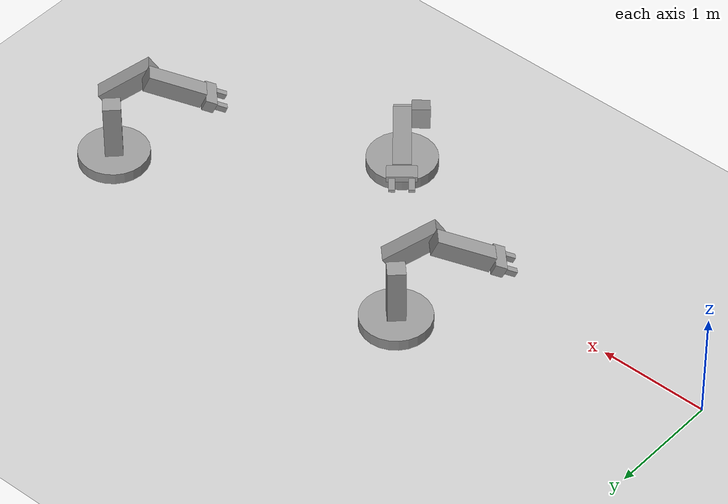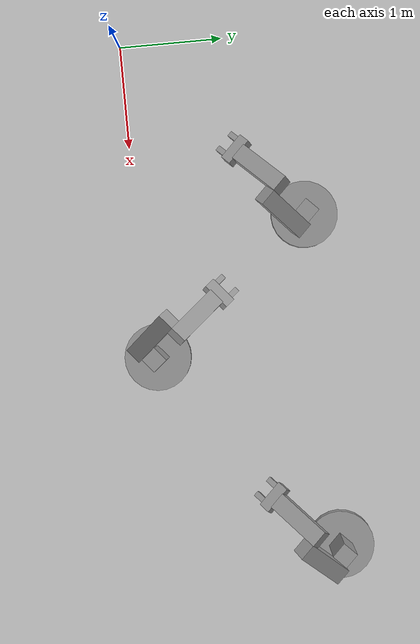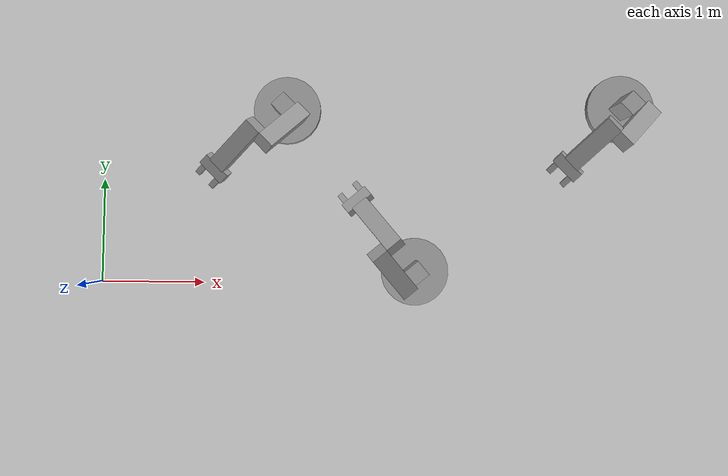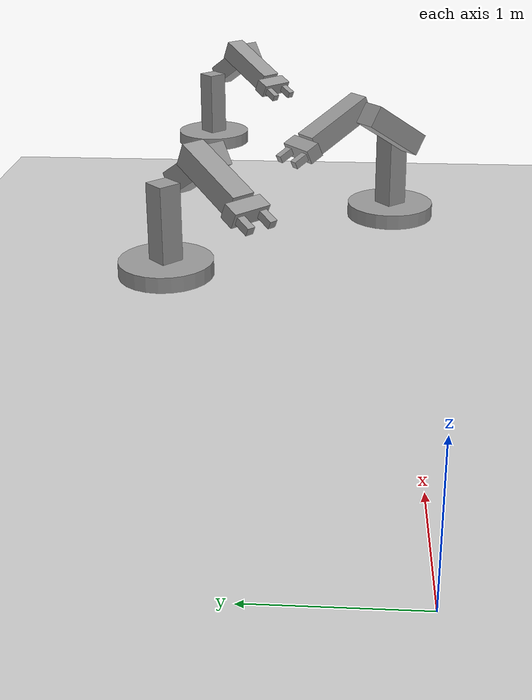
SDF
<sdf version="1.7">
 <world name="default">
  <model name="ground_plane">
   <static>1</static>
   <link name="link">
    <collision name="collision">
     <geometry><plane><normal>0 0 1</normal><size>100 100</size></plane></geometry>
     <surface>
      <contact><collide_bitmask>65535</collide_bitmask></contact>
      <friction><ode><mu>100</mu><mu2>50</mu2></ode></friction>
     </surface>
    </collision>
    <visual name="visual">
     <cast_shadows>0</cast_shadows>
     <geometry><plane><normal>0 0 1</normal><size>100 100</size></plane></geometry>
     <material>
      <script><uri>file://media/materials/scripts/gazebo.material</uri><name>Gazebo/Grey</name></script>
     </material>
    </visual>
   </link>
  </model>
  <model name="fixed_arm_robot">
   <link name="link_0">
    <inertial>
     <mass>1</mass>
     <inertia><ixx>0.145833</ixx><ixy>0</ixy><ixz>0</ixz><iyy>0.145833</iyy><iyz>0</iyz><izz>0.125</izz></inertia>
    </inertial>
    <pose>-0.37347 -0.501985 -0.410714 0 -0 0</pose>
    <visual name="visual">
     <geometry><cylinder><radius>0.3</radius><length>0.1</length></cylinder></geometry>
     <material>
      <lighting>1</lighting>
      <script><uri>file://media/materials/scripts/gazebo.material</uri><name>Gazebo/Grey</name></script>
      <shader type="pixel"><normal_map>__default__</normal_map></shader>
      <ambient>0.3 0.3 0.3 1</ambient>
      <diffuse>0.7 0.7 0.7 1</diffuse>
      <specular>0.01 0.01 0.01 1</specular>
      <emissive>0 0 0 1</emissive>
     </material>
    </visual>
    <collision name="collision">
     <geometry><cylinder><radius>0.3</radius><length>0.1</length></cylinder></geometry>
     <surface>
      <friction>
       <ode><mu>1</mu><mu2>1</mu2><fdir1>0 0 0</fdir1><slip1>0</slip1><slip2>0</slip2></ode>
       <torsional>
        <coefficient>1</coefficient>
        <patch_radius>0</patch_radius>
        <surface_radius>0</surface_radius>
        <use_patch_radius>1</use_patch_radius>
        <ode><slip>0</slip></ode>
       </torsional>
      </friction>
      <bounce><restitution_coefficient>0</restitution_coefficient><threshold>1e+06</threshold></bounce>
      <contact>
       <collide_without_contact>0</collide_without_contact>
       <collide_without_contact_bitmask>1</collide_without_contact_bitmask>
       <collide_bitmask>1</collide_bitmask>
       <ode>
        <soft_cfm>0</soft_cfm>
        <soft_erp>0.2</soft_erp>
        <kp>1e+13</kp>
        <kd>1</kd>
        <max_vel>0.01</max_vel>
        <min_depth>0</min_depth>
       </ode>
       <bullet>
        <split_impulse>1</split_impulse>
        <split_impulse_penetration_threshold>-0.01</split_impulse_penetration_threshold>
        <soft_cfm>0</soft_cfm>
        <soft_erp>0.2</soft_erp>
        <kp>1e+13</kp>
        <kd>1</kd>
       </bullet>
      </contact>
     </surface>
    </collision>
   </link>
   <link name="link_1">
    <inertial>
     <mass>1</mass>
     <inertia>
      <ixx>0.166667</ixx>
      <ixy>0</ixy>
      <ixz>0</ixz>
      <iyy>0.166667</iyy>
      <iyz>0</iyz>
      <izz>0.166667</izz>
     </inertia>
    </inertial>
    <pose>-0.37347 -0.501985 -0.110714 0 -0 0</pose>
    <visual name="visual">
     <geometry><box><size>0.15 0.15 0.5</size></box></geometry>
     <material>
      <lighting>1</lighting>
      <script><uri>file://media/materials/scripts/gazebo.material</uri><name>Gazebo/Grey</name></script>
      <shader type="pixel"><normal_map>__default__</normal_map></shader>
      <ambient>0.3 0.3 0.3 1</ambient>
      <diffuse>0.7 0.7 0.7 1</diffuse>
      <specular>0.01 0.01 0.01 1</specular>
      <emissive>0 0 0 1</emissive>
     </material>
    </visual>
    <collision name="collision">
     <geometry><box><size>0.15 0.15 0.5</size></box></geometry>
     <surface>
      <friction>
       <ode><mu>1</mu><mu2>1</mu2><fdir1>0 0 0</fdir1><slip1>0</slip1><slip2>0</slip2></ode>
       <torsional>
        <coefficient>1</coefficient>
        <patch_radius>0</patch_radius>
        <surface_radius>0</surface_radius>
        <use_patch_radius>1</use_patch_radius>
        <ode><slip>0</slip></ode>
       </torsional>
      </friction>
      <bounce><restitution_coefficient>0</restitution_coefficient><threshold>1e+06</threshold></bounce>
      <contact>
       <collide_without_contact>0</collide_without_contact>
       <collide_without_contact_bitmask>1</collide_without_contact_bitmask>
       <collide_bitmask>1</collide_bitmask>
       <ode>
        <soft_cfm>0</soft_cfm>
        <soft_erp>0.2</soft_erp>
        <kp>1e+13</kp>
        <kd>1</kd>
        <max_vel>0.01</max_vel>
        <min_depth>0</min_depth>
       </ode>
       <bullet>
        <split_impulse>1</split_impulse>
        <split_impulse_penetration_threshold>-0.01</split_impulse_penetration_threshold>
        <soft_cfm>0</soft_cfm>
        <soft_erp>0.2</soft_erp>
        <kp>1e+13</kp>
        <kd>1</kd>
       </bullet>
      </contact>
     </surface>
    </collision>
   </link>
   <link name="link_1_clone">
    <inertial>
     <mass>1</mass>
     <inertia>
      <ixx>0.166667</ixx>
      <ixy>0</ixy>
      <ixz>0</ixz>
      <iyy>0.166667</iyy>
      <iyz>0</iyz>
      <izz>0.166667</izz>
     </inertia>
    </inertial>
    <pose>-0.37347 -0.351985 0.139286 0 1 0</pose>
    <visual name="visual">
     <pose>0 0 0.175 0 -0 0</pose>
     <geometry><box><size>0.15 0.15 0.5</size></box></geometry>
     <material>
      <lighting>1</lighting>
      <script><uri>file://media/materials/scripts/gazebo.material</uri><name>Gazebo/Grey</name></script>
      <shader type="pixel"><normal_map>__default__</normal_map></shader>
      <ambient>0.3 0.3 0.3 1</ambient>
      <diffuse>0.7 0.7 0.7 1</diffuse>
      <specular>0.01 0.01 0.01 1</specular>
      <emissive>0 0 0 1</emissive>
     </material>
    </visual>
    <collision name="collision">
     <pose>0 0 0.175 0 -0 0</pose>
     <geometry><box><size>0.15 0.15 0.5</size></box></geometry>
     <surface>
      <friction>
       <ode><mu>1</mu><mu2>1</mu2><fdir1>0 0 0</fdir1><slip1>0</slip1><slip2>0</slip2></ode>
       <torsional>
        <coefficient>1</coefficient>
        <patch_radius>0</patch_radius>
        <surface_radius>0</surface_radius>
        <use_patch_radius>1</use_patch_radius>
        <ode><slip>0</slip></ode>
       </torsional>
      </friction>
      <bounce><restitution_coefficient>0</restitution_coefficient><threshold>1e+06</threshold></bounce>
      <contact>
       <collide_without_contact>0</collide_without_contact>
       <collide_without_contact_bitmask>1</collide_without_contact_bitmask>
       <collide_bitmask>1</collide_bitmask>
       <ode>
        <soft_cfm>0</soft_cfm>
        <soft_erp>0.2</soft_erp>
        <kp>1e+13</kp>
        <kd>1</kd>
        <max_vel>0.01</max_vel>
        <min_depth>0</min_depth>
       </ode>
       <bullet>
        <split_impulse>1</split_impulse>
        <split_impulse_penetration_threshold>-0.01</split_impulse_penetration_threshold>
        <soft_cfm>0</soft_cfm>
        <soft_erp>0.2</soft_erp>
        <kp>1e+13</kp>
        <kd>1</kd>
       </bullet>
      </contact>
     </surface>
    </collision>
   </link>
   <link name="link_1_clone_clone">
    <inertial>
     <mass>1</mass>
     <inertia>
      <ixx>0.166667</ixx>
      <ixy>0</ixy>
      <ixz>0</ixz>
      <iyy>0.166667</iyy>
      <iyz>0</iyz>
      <izz>0.166667</izz>
     </inertia>
    </inertial>
    <pose>-0.015845 -0.501985 0.368914 3.14159 1.14159 3.14159</pose>
    <visual name="visual">
     <pose>0 0 0.175 0 -0 0</pose>
     <geometry><box><size>0.15 0.15 0.5</size></box></geometry>
     <material>
      <lighting>1</lighting>
      <script><uri>file://media/materials/scripts/gazebo.material</uri><name>Gazebo/Grey</name></script>
      <shader type="pixel"><normal_map>__default__</normal_map></shader>
      <ambient>0.3 0.3 0.3 1</ambient>
      <diffuse>0.7 0.7 0.7 1</diffuse>
      <specular>0.01 0.01 0.01 1</specular>
      <emissive>0 0 0 1</emissive>
     </material>
    </visual>
    <collision name="collision">
     <pose>0 0 0.175 0 -0 0</pose>
     <geometry><box><size>0.15 0.15 0.5</size></box></geometry>
     <surface>
      <friction>
       <ode><mu>1</mu><mu2>1</mu2><fdir1>0 0 0</fdir1><slip1>0</slip1><slip2>0</slip2></ode>
       <torsional>
        <coefficient>1</coefficient>
        <patch_radius>0</patch_radius>
        <surface_radius>0</surface_radius>
        <use_patch_radius>1</use_patch_radius>
        <ode><slip>0</slip></ode>
       </torsional>
      </friction>
      <bounce><restitution_coefficient>0</restitution_coefficient><threshold>1e+06</threshold></bounce>
      <contact>
       <collide_without_contact>0</collide_without_contact>
       <collide_without_contact_bitmask>1</collide_without_contact_bitmask>
       <collide_bitmask>1</collide_bitmask>
       <ode>
        <soft_cfm>0</soft_cfm>
        <soft_erp>0.2</soft_erp>
        <kp>1e+13</kp>
        <kd>1</kd>
        <max_vel>0.01</max_vel>
        <min_depth>0</min_depth>
       </ode>
       <bullet>
        <split_impulse>1</split_impulse>
        <split_impulse_penetration_threshold>-0.01</split_impulse_penetration_threshold>
        <soft_cfm>0</soft_cfm>
        <soft_erp>0.2</soft_erp>
        <kp>1e+13</kp>
        <kd>1</kd>
       </bullet>
      </contact>
     </surface>
    </collision>
   </link>
   <link name="link_2">
    <inertial>
     <mass>1</mass>
     <inertia>
      <ixx>0.166667</ixx>
      <ixy>0</ixy>
      <ixz>0</ixz>
      <iyy>0.166667</iyy>
      <iyz>0</iyz>
      <izz>0.166667</izz>
     </inertia>
    </inertial>
    <pose>0.416072 -0.501985 0.171244 -1.5708 1.14159 -3.14159</pose>
    <visual name="visual">
     <geometry><box><size>0.1 0.1 0.25</size></box></geometry>
     <material>
      <lighting>1</lighting>
      <script><uri>file://media/materials/scripts/gazebo.material</uri><name>Gazebo/Grey</name></script>
      <shader type="pixel"><normal_map>__default__</normal_map></shader>
      <ambient>0.3 0.3 0.3 1</ambient>
      <diffuse>0.7 0.7 0.7 1</diffuse>
      <specular>0.01 0.01 0.01 1</specular>
      <emissive>0 0 0 1</emissive>
     </material>
    </visual>
    <collision name="collision">
     <geometry><box><size>0.1 0.1 0.25</size></box></geometry>
     <surface>
      <friction>
       <ode><mu>1</mu><mu2>1</mu2><fdir1>0 0 0</fdir1><slip1>0</slip1><slip2>0</slip2></ode>
       <torsional>
        <coefficient>1</coefficient>
        <patch_radius>0</patch_radius>
        <surface_radius>0</surface_radius>
        <use_patch_radius>1</use_patch_radius>
        <ode><slip>0</slip></ode>
       </torsional>
      </friction>
      <bounce><restitution_coefficient>0</restitution_coefficient><threshold>1e+06</threshold></bounce>
      <contact>
       <collide_without_contact>0</collide_without_contact>
       <collide_without_contact_bitmask>1</collide_without_contact_bitmask>
       <collide_bitmask>1</collide_bitmask>
       <ode>
        <soft_cfm>0</soft_cfm>
        <soft_erp>0.2</soft_erp>
        <kp>1e+13</kp>
        <kd>1</kd>
        <max_vel>0.01</max_vel>
        <min_depth>0</min_depth>
       </ode>
       <bullet>
        <split_impulse>1</split_impulse>
        <split_impulse_penetration_threshold>-0.01</split_impulse_penetration_threshold>
        <soft_cfm>0</soft_cfm>
        <soft_erp>0.2</soft_erp>
        <kp>1e+13</kp>
        <kd>1</kd>
       </bullet>
      </contact>
     </surface>
    </collision>
   </link>
   <link name="link_3">
    <inertial>
     <mass>1</mass>
     <inertia>
      <ixx>0.166667</ixx>
      <ixy>0</ixy>
      <ixz>0</ixz>
      <iyy>0.166667</iyy>
      <iyz>0</iyz>
      <izz>0.166667</izz>
     </inertia>
    </inertial>
    <pose>0.507001 -0.421985 0.12963 -1e-06 1.14159 -3.14159</pose>
    <visual name="visual">
     <geometry><box><size>0.05 0.05 0.1</size></box></geometry>
     <material>
      <lighting>1</lighting>
      <script><uri>file://media/materials/scripts/gazebo.material</uri><name>Gazebo/Grey</name></script>
      <shader type="pixel"><normal_map>__default__</normal_map></shader>
      <ambient>0.3 0.3 0.3 1</ambient>
      <diffuse>0.7 0.7 0.7 1</diffuse>
      <specular>0.01 0.01 0.01 1</specular>
      <emissive>0 0 0 1</emissive>
     </material>
    </visual>
    <collision name="collision">
     <geometry><box><size>0.05 0.05 0.1</size></box></geometry>
     <surface>
      <friction>
       <ode><mu>1</mu><mu2>1</mu2><fdir1>0 0 0</fdir1><slip1>0</slip1><slip2>0</slip2></ode>
       <torsional>
        <coefficient>1</coefficient>
        <patch_radius>0</patch_radius>
        <surface_radius>0</surface_radius>
        <use_patch_radius>1</use_patch_radius>
        <ode><slip>0</slip></ode>
       </torsional>
      </friction>
      <bounce><restitution_coefficient>0</restitution_coefficient><threshold>1e+06</threshold></bounce>
      <contact>
       <collide_without_contact>0</collide_without_contact>
       <collide_without_contact_bitmask>1</collide_without_contact_bitmask>
       <collide_bitmask>1</collide_bitmask>
       <ode>
        <soft_cfm>0</soft_cfm>
        <soft_erp>0.2</soft_erp>
        <kp>1e+13</kp>
        <kd>1</kd>
        <max_vel>0.01</max_vel>
        <min_depth>0</min_depth>
       </ode>
       <bullet>
        <split_impulse>1</split_impulse>
        <split_impulse_penetration_threshold>-0.01</split_impulse_penetration_threshold>
        <soft_cfm>0</soft_cfm>
        <soft_erp>0.2</soft_erp>
        <kp>1e+13</kp>
        <kd>1</kd>
       </bullet>
      </contact>
     </surface>
    </collision>
   </link>
   <link name="link_3_clone">
    <inertial>
     <mass>1</mass>
     <inertia>
      <ixx>0.166667</ixx>
      <ixy>0</ixy>
      <ixz>0</ixz>
      <iyy>0.166667</iyy>
      <iyz>0</iyz>
      <izz>0.166667</izz>
     </inertia>
    </inertial>
    <pose>0.507002 -0.581985 0.12963 -1e-06 1.14159 -3.14159</pose>
    <visual name="visual">
     <geometry><box><size>0.05 0.05 0.1</size></box></geometry>
     <material>
      <lighting>1</lighting>
      <script><uri>file://media/materials/scripts/gazebo.material</uri><name>Gazebo/Grey</name></script>
      <shader type="pixel"><normal_map>__default__</normal_map></shader>
      <ambient>0.3 0.3 0.3 1</ambient>
      <diffuse>0.7 0.7 0.7 1</diffuse>
      <specular>0.01 0.01 0.01 1</specular>
      <emissive>0 0 0 1</emissive>
     </material>
    </visual>
    <collision name="collision">
     <geometry><box><size>0.05 0.05 0.1</size></box></geometry>
     <surface>
      <friction>
       <ode><mu>1</mu><mu2>1</mu2><fdir1>0 0 0</fdir1><slip1>0</slip1><slip2>0</slip2></ode>
       <torsional>
        <coefficient>1</coefficient>
        <patch_radius>0</patch_radius>
        <surface_radius>0</surface_radius>
        <use_patch_radius>1</use_patch_radius>
        <ode><slip>0</slip></ode>
       </torsional>
      </friction>
      <bounce><restitution_coefficient>0</restitution_coefficient><threshold>1e+06</threshold></bounce>
      <contact>
       <collide_without_contact>0</collide_without_contact>
       <collide_without_contact_bitmask>1</collide_without_contact_bitmask>
       <collide_bitmask>1</collide_bitmask>
       <ode>
        <soft_cfm>0</soft_cfm>
        <soft_erp>0.2</soft_erp>
        <kp>1e+13</kp>
        <kd>1</kd>
        <max_vel>0.01</max_vel>
        <min_depth>0</min_depth>
       </ode>
       <bullet>
        <split_impulse>1</split_impulse>
        <split_impulse_penetration_threshold>-0.01</split_impulse_penetration_threshold>
        <soft_cfm>0</soft_cfm>
        <soft_erp>0.2</soft_erp>
        <kp>1e+13</kp>
        <kd>1</kd>
       </bullet>
      </contact>
     </surface>
    </collision>
   </link>
   <joint name="link_0_JOINT_0" type="fixed">
    <parent>link_0</parent>
    <child>link_1</child>
    <physics>
     <ode><limit><cfm>0</cfm><erp>0.2</erp></limit><suspension><cfm>0</cfm><erp>0.2</erp></suspension></ode>
    </physics>
   </joint>
   <joint name="link_1_JOINT_5" type="fixed">
    <parent>link_1</parent>
    <child>link_1_clone</child>
    <physics>
     <ode><limit><cfm>0</cfm><erp>0.2</erp></limit><suspension><cfm>0</cfm><erp>0.2</erp></suspension></ode>
    </physics>
   </joint>
   <joint name="link_1_clone_JOINT_6" type="fixed">
    <parent>link_1_clone</parent>
    <child>link_1_clone_clone</child>
    <physics>
     <ode><limit><cfm>0</cfm><erp>0.2</erp></limit><suspension><cfm>0</cfm><erp>0.2</erp></suspension></ode>
    </physics>
   </joint>
   <joint name="link_1_clone_clone_JOINT_8" type="fixed">
    <parent>link_1_clone_clone</parent>
    <child>link_2</child>
    <physics>
     <ode><limit><cfm>0</cfm><erp>0.2</erp></limit><suspension><cfm>0</cfm><erp>0.2</erp></suspension></ode>
    </physics>
   </joint>
   <joint name="link_2_JOINT_9" type="fixed">
    <parent>link_2</parent>
    <child>link_3</child>
    <physics>
     <ode><limit><cfm>0</cfm><erp>0.2</erp></limit><suspension><cfm>0</cfm><erp>0.2</erp></suspension></ode>
    </physics>
   </joint>
   <joint name="link_3_JOINT_10" type="fixed">
    <parent>link_3</parent>
    <child>link_3_clone</child>
    <physics>
     <ode><limit><cfm>0</cfm><erp>0.2</erp></limit><suspension><cfm>0</cfm><erp>0.2</erp></suspension></ode>
    </physics>
   </joint>
   <static>1</static>
   <pose>1.95402 0.977345 1.42548 -1e-06 1e-06 -2.36039</pose>
  </model>
  <model name="fixed_arm_robot_clone">
   <link name="link_0">
    <inertial>
     <mass>1</mass>
     <inertia><ixx>0.145833</ixx><ixy>0</ixy><ixz>0</ixz><iyy>0.145833</iyy><iyz>0</iyz><izz>0.125</izz></inertia>
    </inertial>
    <pose>-0.37347 -0.501985 -0.410714 0 -0 0</pose>
    <visual name="visual">
     <geometry><cylinder><radius>0.3</radius><length>0.1</length></cylinder></geometry>
     <material>
      <lighting>1</lighting>
      <script><uri>file://media/materials/scripts/gazebo.material</uri><name>Gazebo/Grey</name></script>
      <shader type="pixel"><normal_map>__default__</normal_map></shader>
      <ambient>0.3 0.3 0.3 1</ambient>
      <diffuse>0.7 0.7 0.7 1</diffuse>
      <specular>0.01 0.01 0.01 1</specular>
      <emissive>0 0 0 1</emissive>
     </material>
    </visual>
    <collision name="collision">
     <geometry><cylinder><radius>0.3</radius><length>0.1</length></cylinder></geometry>
     <surface>
      <friction>
       <ode><mu>1</mu><mu2>1</mu2><fdir1>0 0 0</fdir1><slip1>0</slip1><slip2>0</slip2></ode>
       <torsional>
        <coefficient>1</coefficient>
        <patch_radius>0</patch_radius>
        <surface_radius>0</surface_radius>
        <use_patch_radius>1</use_patch_radius>
        <ode><slip>0</slip></ode>
       </torsional>
      </friction>
      <bounce><restitution_coefficient>0</restitution_coefficient><threshold>1e+06</threshold></bounce>
      <contact>
       <collide_without_contact>0</collide_without_contact>
       <collide_without_contact_bitmask>1</collide_without_contact_bitmask>
       <collide_bitmask>1</collide_bitmask>
       <ode>
        <soft_cfm>0</soft_cfm>
        <soft_erp>0.2</soft_erp>
        <kp>1e+13</kp>
        <kd>1</kd>
        <max_vel>0.01</max_vel>
        <min_depth>0</min_depth>
       </ode>
       <bullet>
        <split_impulse>1</split_impulse>
        <split_impulse_penetration_threshold>-0.01</split_impulse_penetration_threshold>
        <soft_cfm>0</soft_cfm>
        <soft_erp>0.2</soft_erp>
        <kp>1e+13</kp>
        <kd>1</kd>
       </bullet>
      </contact>
     </surface>
    </collision>
   </link>
   <link name="link_1">
    <inertial>
     <mass>1</mass>
     <inertia>
      <ixx>0.166667</ixx>
      <ixy>0</ixy>
      <ixz>0</ixz>
      <iyy>0.166667</iyy>
      <iyz>0</iyz>
      <izz>0.166667</izz>
     </inertia>
    </inertial>
    <pose>-0.37347 -0.501985 -0.110714 0 -0 0</pose>
    <visual name="visual">
     <geometry><box><size>0.15 0.15 0.5</size></box></geometry>
     <material>
      <lighting>1</lighting>
      <script><uri>file://media/materials/scripts/gazebo.material</uri><name>Gazebo/Grey</name></script>
      <shader type="pixel"><normal_map>__default__</normal_map></shader>
      <ambient>0.3 0.3 0.3 1</ambient>
      <diffuse>0.7 0.7 0.7 1</diffuse>
      <specular>0.01 0.01 0.01 1</specular>
      <emissive>0 0 0 1</emissive>
     </material>
    </visual>
    <collision name="collision">
     <geometry><box><size>0.15 0.15 0.5</size></box></geometry>
     <surface>
      <friction>
       <ode><mu>1</mu><mu2>1</mu2><fdir1>0 0 0</fdir1><slip1>0</slip1><slip2>0</slip2></ode>
       <torsional>
        <coefficient>1</coefficient>
        <patch_radius>0</patch_radius>
        <surface_radius>0</surface_radius>
        <use_patch_radius>1</use_patch_radius>
        <ode><slip>0</slip></ode>
       </torsional>
      </friction>
      <bounce><restitution_coefficient>0</restitution_coefficient><threshold>1e+06</threshold></bounce>
      <contact>
       <collide_without_contact>0</collide_without_contact>
       <collide_without_contact_bitmask>1</collide_without_contact_bitmask>
       <collide_bitmask>1</collide_bitmask>
       <ode>
        <soft_cfm>0</soft_cfm>
        <soft_erp>0.2</soft_erp>
        <kp>1e+13</kp>
        <kd>1</kd>
        <max_vel>0.01</max_vel>
        <min_depth>0</min_depth>
       </ode>
       <bullet>
        <split_impulse>1</split_impulse>
        <split_impulse_penetration_threshold>-0.01</split_impulse_penetration_threshold>
        <soft_cfm>0</soft_cfm>
        <soft_erp>0.2</soft_erp>
        <kp>1e+13</kp>
        <kd>1</kd>
       </bullet>
      </contact>
     </surface>
    </collision>
   </link>
   <link name="link_1_clone">
    <inertial>
     <mass>1</mass>
     <inertia>
      <ixx>0.166667</ixx>
      <ixy>0</ixy>
      <ixz>0</ixz>
      <iyy>0.166667</iyy>
      <iyz>0</iyz>
      <izz>0.166667</izz>
     </inertia>
    </inertial>
    <pose>-0.37347 -0.351985 0.139286 0 1 0</pose>
    <visual name="visual">
     <pose>0 0 0.175 0 -0 0</pose>
     <geometry><box><size>0.15 0.15 0.5</size></box></geometry>
     <material>
      <lighting>1</lighting>
      <script><uri>file://media/materials/scripts/gazebo.material</uri><name>Gazebo/Grey</name></script>
      <shader type="pixel"><normal_map>__default__</normal_map></shader>
      <ambient>0.3 0.3 0.3 1</ambient>
      <diffuse>0.7 0.7 0.7 1</diffuse>
      <specular>0.01 0.01 0.01 1</specular>
      <emissive>0 0 0 1</emissive>
     </material>
    </visual>
    <collision name="collision">
     <pose>0 0 0.175 0 -0 0</pose>
     <geometry><box><size>0.15 0.15 0.5</size></box></geometry>
     <surface>
      <friction>
       <ode><mu>1</mu><mu2>1</mu2><fdir1>0 0 0</fdir1><slip1>0</slip1><slip2>0</slip2></ode>
       <torsional>
        <coefficient>1</coefficient>
        <patch_radius>0</patch_radius>
        <surface_radius>0</surface_radius>
        <use_patch_radius>1</use_patch_radius>
        <ode><slip>0</slip></ode>
       </torsional>
      </friction>
      <bounce><restitution_coefficient>0</restitution_coefficient><threshold>1e+06</threshold></bounce>
      <contact>
       <collide_without_contact>0</collide_without_contact>
       <collide_without_contact_bitmask>1</collide_without_contact_bitmask>
       <collide_bitmask>1</collide_bitmask>
       <ode>
        <soft_cfm>0</soft_cfm>
        <soft_erp>0.2</soft_erp>
        <kp>1e+13</kp>
        <kd>1</kd>
        <max_vel>0.01</max_vel>
        <min_depth>0</min_depth>
       </ode>
       <bullet>
        <split_impulse>1</split_impulse>
        <split_impulse_penetration_threshold>-0.01</split_impulse_penetration_threshold>
        <soft_cfm>0</soft_cfm>
        <soft_erp>0.2</soft_erp>
        <kp>1e+13</kp>
        <kd>1</kd>
       </bullet>
      </contact>
     </surface>
    </collision>
   </link>
   <link name="link_1_clone_clone">
    <inertial>
     <mass>1</mass>
     <inertia>
      <ixx>0.166667</ixx>
      <ixy>0</ixy>
      <ixz>0</ixz>
      <iyy>0.166667</iyy>
      <iyz>0</iyz>
      <izz>0.166667</izz>
     </inertia>
    </inertial>
    <pose>-0.015845 -0.501985 0.368914 3.14159 1.14159 3.14159</pose>
    <visual name="visual">
     <pose>0 0 0.175 0 -0 0</pose>
     <geometry><box><size>0.15 0.15 0.5</size></box></geometry>
     <material>
      <lighting>1</lighting>
      <script><uri>file://media/materials/scripts/gazebo.material</uri><name>Gazebo/Grey</name></script>
      <shader type="pixel"><normal_map>__default__</normal_map></shader>
      <ambient>0.3 0.3 0.3 1</ambient>
      <diffuse>0.7 0.7 0.7 1</diffuse>
      <specular>0.01 0.01 0.01 1</specular>
      <emissive>0 0 0 1</emissive>
     </material>
    </visual>
    <collision name="collision">
     <pose>0 0 0.175 0 -0 0</pose>
     <geometry><box><size>0.15 0.15 0.5</size></box></geometry>
     <surface>
      <friction>
       <ode><mu>1</mu><mu2>1</mu2><fdir1>0 0 0</fdir1><slip1>0</slip1><slip2>0</slip2></ode>
       <torsional>
        <coefficient>1</coefficient>
        <patch_radius>0</patch_radius>
        <surface_radius>0</surface_radius>
        <use_patch_radius>1</use_patch_radius>
        <ode><slip>0</slip></ode>
       </torsional>
      </friction>
      <bounce><restitution_coefficient>0</restitution_coefficient><threshold>1e+06</threshold></bounce>
      <contact>
       <collide_without_contact>0</collide_without_contact>
       <collide_without_contact_bitmask>1</collide_without_contact_bitmask>
       <collide_bitmask>1</collide_bitmask>
       <ode>
        <soft_cfm>0</soft_cfm>
        <soft_erp>0.2</soft_erp>
        <kp>1e+13</kp>
        <kd>1</kd>
        <max_vel>0.01</max_vel>
        <min_depth>0</min_depth>
       </ode>
       <bullet>
        <split_impulse>1</split_impulse>
        <split_impulse_penetration_threshold>-0.01</split_impulse_penetration_threshold>
        <soft_cfm>0</soft_cfm>
        <soft_erp>0.2</soft_erp>
        <kp>1e+13</kp>
        <kd>1</kd>
       </bullet>
      </contact>
     </surface>
    </collision>
   </link>
   <link name="link_2">
    <inertial>
     <mass>1</mass>
     <inertia>
      <ixx>0.166667</ixx>
      <ixy>0</ixy>
      <ixz>0</ixz>
      <iyy>0.166667</iyy>
      <iyz>0</iyz>
      <izz>0.166667</izz>
     </inertia>
    </inertial>
    <pose>0.416072 -0.501985 0.171244 -1.5708 1.14159 -3.14159</pose>
    <visual name="visual">
     <geometry><box><size>0.1 0.1 0.25</size></box></geometry>
     <material>
      <lighting>1</lighting>
      <script><uri>file://media/materials/scripts/gazebo.material</uri><name>Gazebo/Grey</name></script>
      <shader type="pixel"><normal_map>__default__</normal_map></shader>
      <ambient>0.3 0.3 0.3 1</ambient>
      <diffuse>0.7 0.7 0.7 1</diffuse>
      <specular>0.01 0.01 0.01 1</specular>
      <emissive>0 0 0 1</emissive>
     </material>
    </visual>
    <collision name="collision">
     <geometry><box><size>0.1 0.1 0.25</size></box></geometry>
     <surface>
      <friction>
       <ode><mu>1</mu><mu2>1</mu2><fdir1>0 0 0</fdir1><slip1>0</slip1><slip2>0</slip2></ode>
       <torsional>
        <coefficient>1</coefficient>
        <patch_radius>0</patch_radius>
        <surface_radius>0</surface_radius>
        <use_patch_radius>1</use_patch_radius>
        <ode><slip>0</slip></ode>
       </torsional>
      </friction>
      <bounce><restitution_coefficient>0</restitution_coefficient><threshold>1e+06</threshold></bounce>
      <contact>
       <collide_without_contact>0</collide_without_contact>
       <collide_without_contact_bitmask>1</collide_without_contact_bitmask>
       <collide_bitmask>1</collide_bitmask>
       <ode>
        <soft_cfm>0</soft_cfm>
        <soft_erp>0.2</soft_erp>
        <kp>1e+13</kp>
        <kd>1</kd>
        <max_vel>0.01</max_vel>
        <min_depth>0</min_depth>
       </ode>
       <bullet>
        <split_impulse>1</split_impulse>
        <split_impulse_penetration_threshold>-0.01</split_impulse_penetration_threshold>
        <soft_cfm>0</soft_cfm>
        <soft_erp>0.2</soft_erp>
        <kp>1e+13</kp>
        <kd>1</kd>
       </bullet>
      </contact>
     </surface>
    </collision>
   </link>
   <link name="link_3">
    <inertial>
     <mass>1</mass>
     <inertia>
      <ixx>0.166667</ixx>
      <ixy>0</ixy>
      <ixz>0</ixz>
      <iyy>0.166667</iyy>
      <iyz>0</iyz>
      <izz>0.166667</izz>
     </inertia>
    </inertial>
    <pose>0.507001 -0.421985 0.12963 -1e-06 1.14159 -3.14159</pose>
    <visual name="visual">
     <geometry><box><size>0.05 0.05 0.1</size></box></geometry>
     <material>
      <lighting>1</lighting>
      <script><uri>file://media/materials/scripts/gazebo.material</uri><name>Gazebo/Grey</name></script>
      <shader type="pixel"><normal_map>__default__</normal_map></shader>
      <ambient>0.3 0.3 0.3 1</ambient>
      <diffuse>0.7 0.7 0.7 1</diffuse>
      <specular>0.01 0.01 0.01 1</specular>
      <emissive>0 0 0 1</emissive>
     </material>
    </visual>
    <collision name="collision">
     <geometry><box><size>0.05 0.05 0.1</size></box></geometry>
     <surface>
      <friction>
       <ode><mu>1</mu><mu2>1</mu2><fdir1>0 0 0</fdir1><slip1>0</slip1><slip2>0</slip2></ode>
       <torsional>
        <coefficient>1</coefficient>
        <patch_radius>0</patch_radius>
        <surface_radius>0</surface_radius>
        <use_patch_radius>1</use_patch_radius>
        <ode><slip>0</slip></ode>
       </torsional>
      </friction>
      <bounce><restitution_coefficient>0</restitution_coefficient><threshold>1e+06</threshold></bounce>
      <contact>
       <collide_without_contact>0</collide_without_contact>
       <collide_without_contact_bitmask>1</collide_without_contact_bitmask>
       <collide_bitmask>1</collide_bitmask>
       <ode>
        <soft_cfm>0</soft_cfm>
        <soft_erp>0.2</soft_erp>
        <kp>1e+13</kp>
        <kd>1</kd>
        <max_vel>0.01</max_vel>
        <min_depth>0</min_depth>
       </ode>
       <bullet>
        <split_impulse>1</split_impulse>
        <split_impulse_penetration_threshold>-0.01</split_impulse_penetration_threshold>
        <soft_cfm>0</soft_cfm>
        <soft_erp>0.2</soft_erp>
        <kp>1e+13</kp>
        <kd>1</kd>
       </bullet>
      </contact>
     </surface>
    </collision>
   </link>
   <link name="link_3_clone">
    <inertial>
     <mass>1</mass>
     <inertia>
      <ixx>0.166667</ixx>
      <ixy>0</ixy>
      <ixz>0</ixz>
      <iyy>0.166667</iyy>
      <iyz>0</iyz>
      <izz>0.166667</izz>
     </inertia>
    </inertial>
    <pose>0.507002 -0.581985 0.12963 -1e-06 1.14159 -3.14159</pose>
    <visual name="visual">
     <geometry><box><size>0.05 0.05 0.1</size></box></geometry>
     <material>
      <lighting>1</lighting>
      <script><uri>file://media/materials/scripts/gazebo.material</uri><name>Gazebo/Grey</name></script>
      <shader type="pixel"><normal_map>__default__</normal_map></shader>
      <ambient>0.3 0.3 0.3 1</ambient>
      <diffuse>0.7 0.7 0.7 1</diffuse>
      <specular>0.01 0.01 0.01 1</specular>
      <emissive>0 0 0 1</emissive>
     </material>
    </visual>
    <collision name="collision">
     <geometry><box><size>0.05 0.05 0.1</size></box></geometry>
     <surface>
      <friction>
       <ode><mu>1</mu><mu2>1</mu2><fdir1>0 0 0</fdir1><slip1>0</slip1><slip2>0</slip2></ode>
       <torsional>
        <coefficient>1</coefficient>
        <patch_radius>0</patch_radius>
        <surface_radius>0</surface_radius>
        <use_patch_radius>1</use_patch_radius>
        <ode><slip>0</slip></ode>
       </torsional>
      </friction>
      <bounce><restitution_coefficient>0</restitution_coefficient><threshold>1e+06</threshold></bounce>
      <contact>
       <collide_without_contact>0</collide_without_contact>
       <collide_without_contact_bitmask>1</collide_without_contact_bitmask>
       <collide_bitmask>1</collide_bitmask>
       <ode>
        <soft_cfm>0</soft_cfm>
        <soft_erp>0.2</soft_erp>
        <kp>1e+13</kp>
        <kd>1</kd>
        <max_vel>0.01</max_vel>
        <min_depth>0</min_depth>
       </ode>
       <bullet>
        <split_impulse>1</split_impulse>
        <split_impulse_penetration_threshold>-0.01</split_impulse_penetration_threshold>
        <soft_cfm>0</soft_cfm>
        <soft_erp>0.2</soft_erp>
        <kp>1e+13</kp>
        <kd>1</kd>
       </bullet>
      </contact>
     </surface>
    </collision>
   </link>
   <joint name="link_0_JOINT_0" type="fixed">
    <parent>link_0</parent>
    <child>link_1</child>
    <physics>
     <ode><limit><cfm>0</cfm><erp>0.2</erp></limit><suspension><cfm>0</cfm><erp>0.2</erp></suspension></ode>
    </physics>
   </joint>
   <joint name="link_1_JOINT_5" type="fixed">
    <parent>link_1</parent>
    <child>link_1_clone</child>
    <physics>
     <ode><limit><cfm>0</cfm><erp>0.2</erp></limit><suspension><cfm>0</cfm><erp>0.2</erp></suspension></ode>
    </physics>
   </joint>
   <joint name="link_1_clone_JOINT_6" type="fixed">
    <parent>link_1_clone</parent>
    <child>link_1_clone_clone</child>
    <physics>
     <ode><limit><cfm>0</cfm><erp>0.2</erp></limit><suspension><cfm>0</cfm><erp>0.2</erp></suspension></ode>
    </physics>
   </joint>
   <joint name="link_1_clone_clone_JOINT_8" type="fixed">
    <parent>link_1_clone_clone</parent>
    <child>link_2</child>
    <physics>
     <ode><limit><cfm>0</cfm><erp>0.2</erp></limit><suspension><cfm>0</cfm><erp>0.2</erp></suspension></ode>
    </physics>
   </joint>
   <joint name="link_2_JOINT_9" type="fixed">
    <parent>link_2</parent>
    <child>link_3</child>
    <physics>
     <ode><limit><cfm>0</cfm><erp>0.2</erp></limit><suspension><cfm>0</cfm><erp>0.2</erp></suspension></ode>
    </physics>
   </joint>
   <joint name="link_3_JOINT_10" type="fixed">
    <parent>link_3</parent>
    <child>link_3_clone</child>
    <physics>
     <ode><limit><cfm>0</cfm><erp>0.2</erp></limit><suspension><cfm>0</cfm><erp>0.2</erp></suspension></ode>
    </physics>
   </joint>
   <static>1</static>
   <pose>4.94358 1.03116 1.42548 -1e-06 1e-06 -2.36039</pose>
  </model>
  <model name="fixed_arm_robot_clone_1_clone_clone_0">
   <link name="link_0">
    <inertial>
     <mass>1</mass>
     <inertia><ixx>0.145833</ixx><ixy>0</ixy><ixz>0</ixz><iyy>0.145833</iyy><iyz>0</iyz><izz>0.125</izz></inertia>
    </inertial>
    <pose>-0.37347 -0.501985 -0.410714 0 -0 0</pose>
    <visual name="visual">
     <geometry><cylinder><radius>0.3</radius><length>0.1</length></cylinder></geometry>
     <material>
      <lighting>1</lighting>
      <script><uri>file://media/materials/scripts/gazebo.material</uri><name>Gazebo/Grey</name></script>
      <shader type="pixel"><normal_map>__default__</normal_map></shader>
      <ambient>0.3 0.3 0.3 1</ambient>
      <diffuse>0.7 0.7 0.7 1</diffuse>
      <specular>0.01 0.01 0.01 1</specular>
      <emissive>0 0 0 1</emissive>
     </material>
    </visual>
    <collision name="collision">
     <geometry><cylinder><radius>0.3</radius><length>0.1</length></cylinder></geometry>
     <surface>
      <friction>
       <ode><mu>1</mu><mu2>1</mu2><fdir1>0 0 0</fdir1><slip1>0</slip1><slip2>0</slip2></ode>
       <torsional>
        <coefficient>1</coefficient>
        <patch_radius>0</patch_radius>
        <surface_radius>0</surface_radius>
        <use_patch_radius>1</use_patch_radius>
        <ode><slip>0</slip></ode>
       </torsional>
      </friction>
      <bounce><restitution_coefficient>0</restitution_coefficient><threshold>1e+06</threshold></bounce>
      <contact>
       <collide_without_contact>0</collide_without_contact>
       <collide_without_contact_bitmask>1</collide_without_contact_bitmask>
       <collide_bitmask>1</collide_bitmask>
       <ode>
        <soft_cfm>0</soft_cfm>
        <soft_erp>0.2</soft_erp>
        <kp>1e+13</kp>
        <kd>1</kd>
        <max_vel>0.01</max_vel>
        <min_depth>0</min_depth>
       </ode>
       <bullet>
        <split_impulse>1</split_impulse>
        <split_impulse_penetration_threshold>-0.01</split_impulse_penetration_threshold>
        <soft_cfm>0</soft_cfm>
        <soft_erp>0.2</soft_erp>
        <kp>1e+13</kp>
        <kd>1</kd>
       </bullet>
      </contact>
     </surface>
    </collision>
   </link>
   <link name="link_1">
    <inertial>
     <mass>1</mass>
     <inertia>
      <ixx>0.166667</ixx>
      <ixy>0</ixy>
      <ixz>0</ixz>
      <iyy>0.166667</iyy>
      <iyz>0</iyz>
      <izz>0.166667</izz>
     </inertia>
    </inertial>
    <pose>-0.37347 -0.501985 -0.110714 0 -0 0</pose>
    <visual name="visual">
     <geometry><box><size>0.15 0.15 0.5</size></box></geometry>
     <material>
      <lighting>1</lighting>
      <script><uri>file://media/materials/scripts/gazebo.material</uri><name>Gazebo/Grey</name></script>
      <shader type="pixel"><normal_map>__default__</normal_map></shader>
      <ambient>0.3 0.3 0.3 1</ambient>
      <diffuse>0.7 0.7 0.7 1</diffuse>
      <specular>0.01 0.01 0.01 1</specular>
      <emissive>0 0 0 1</emissive>
     </material>
    </visual>
    <collision name="collision">
     <geometry><box><size>0.15 0.15 0.5</size></box></geometry>
     <surface>
      <friction>
       <ode><mu>1</mu><mu2>1</mu2><fdir1>0 0 0</fdir1><slip1>0</slip1><slip2>0</slip2></ode>
       <torsional>
        <coefficient>1</coefficient>
        <patch_radius>0</patch_radius>
        <surface_radius>0</surface_radius>
        <use_patch_radius>1</use_patch_radius>
        <ode><slip>0</slip></ode>
       </torsional>
      </friction>
      <bounce><restitution_coefficient>0</restitution_coefficient><threshold>1e+06</threshold></bounce>
      <contact>
       <collide_without_contact>0</collide_without_contact>
       <collide_without_contact_bitmask>1</collide_without_contact_bitmask>
       <collide_bitmask>1</collide_bitmask>
       <ode>
        <soft_cfm>0</soft_cfm>
        <soft_erp>0.2</soft_erp>
        <kp>1e+13</kp>
        <kd>1</kd>
        <max_vel>0.01</max_vel>
        <min_depth>0</min_depth>
       </ode>
       <bullet>
        <split_impulse>1</split_impulse>
        <split_impulse_penetration_threshold>-0.01</split_impulse_penetration_threshold>
        <soft_cfm>0</soft_cfm>
        <soft_erp>0.2</soft_erp>
        <kp>1e+13</kp>
        <kd>1</kd>
       </bullet>
      </contact>
     </surface>
    </collision>
   </link>
   <link name="link_1_clone">
    <inertial>
     <mass>1</mass>
     <inertia>
      <ixx>0.166667</ixx>
      <ixy>0</ixy>
      <ixz>0</ixz>
      <iyy>0.166667</iyy>
      <iyz>0</iyz>
      <izz>0.166667</izz>
     </inertia>
    </inertial>
    <pose>-0.37347 -0.351985 0.139286 0 1 0</pose>
    <visual name="visual">
     <pose>0 0 0.175 0 -0 0</pose>
     <geometry><box><size>0.15 0.15 0.5</size></box></geometry>
     <material>
      <lighting>1</lighting>
      <script><uri>file://media/materials/scripts/gazebo.material</uri><name>Gazebo/Grey</name></script>
      <shader type="pixel"><normal_map>__default__</normal_map></shader>
      <ambient>0.3 0.3 0.3 1</ambient>
      <diffuse>0.7 0.7 0.7 1</diffuse>
      <specular>0.01 0.01 0.01 1</specular>
      <emissive>0 0 0 1</emissive>
     </material>
    </visual>
    <collision name="collision">
     <pose>0 0 0.175 0 -0 0</pose>
     <geometry><box><size>0.15 0.15 0.5</size></box></geometry>
     <surface>
      <friction>
       <ode><mu>1</mu><mu2>1</mu2><fdir1>0 0 0</fdir1><slip1>0</slip1><slip2>0</slip2></ode>
       <torsional>
        <coefficient>1</coefficient>
        <patch_radius>0</patch_radius>
        <surface_radius>0</surface_radius>
        <use_patch_radius>1</use_patch_radius>
        <ode><slip>0</slip></ode>
       </torsional>
      </friction>
      <bounce><restitution_coefficient>0</restitution_coefficient><threshold>1e+06</threshold></bounce>
      <contact>
       <collide_without_contact>0</collide_without_contact>
       <collide_without_contact_bitmask>1</collide_without_contact_bitmask>
       <collide_bitmask>1</collide_bitmask>
       <ode>
        <soft_cfm>0</soft_cfm>
        <soft_erp>0.2</soft_erp>
        <kp>1e+13</kp>
        <kd>1</kd>
        <max_vel>0.01</max_vel>
        <min_depth>0</min_depth>
       </ode>
       <bullet>
        <split_impulse>1</split_impulse>
        <split_impulse_penetration_threshold>-0.01</split_impulse_penetration_threshold>
        <soft_cfm>0</soft_cfm>
        <soft_erp>0.2</soft_erp>
        <kp>1e+13</kp>
        <kd>1</kd>
       </bullet>
      </contact>
     </surface>
    </collision>
   </link>
   <link name="link_1_clone_clone">
    <inertial>
     <mass>1</mass>
     <inertia>
      <ixx>0.166667</ixx>
      <ixy>0</ixy>
      <ixz>0</ixz>
      <iyy>0.166667</iyy>
      <iyz>0</iyz>
      <izz>0.166667</izz>
     </inertia>
    </inertial>
    <pose>-0.015845 -0.501985 0.368914 3.14159 1.14159 3.14159</pose>
    <visual name="visual">
     <pose>0 0 0.175 0 -0 0</pose>
     <geometry><box><size>0.15 0.15 0.5</size></box></geometry>
     <material>
      <lighting>1</lighting>
      <script><uri>file://media/materials/scripts/gazebo.material</uri><name>Gazebo/Grey</name></script>
      <shader type="pixel"><normal_map>__default__</normal_map></shader>
      <ambient>0.3 0.3 0.3 1</ambient>
      <diffuse>0.7 0.7 0.7 1</diffuse>
      <specular>0.01 0.01 0.01 1</specular>
      <emissive>0 0 0 1</emissive>
     </material>
    </visual>
    <collision name="collision">
     <pose>0 0 0.175 0 -0 0</pose>
     <geometry><box><size>0.15 0.15 0.5</size></box></geometry>
     <surface>
      <friction>
       <ode><mu>1</mu><mu2>1</mu2><fdir1>0 0 0</fdir1><slip1>0</slip1><slip2>0</slip2></ode>
       <torsional>
        <coefficient>1</coefficient>
        <patch_radius>0</patch_radius>
        <surface_radius>0</surface_radius>
        <use_patch_radius>1</use_patch_radius>
        <ode><slip>0</slip></ode>
       </torsional>
      </friction>
      <bounce><restitution_coefficient>0</restitution_coefficient><threshold>1e+06</threshold></bounce>
      <contact>
       <collide_without_contact>0</collide_without_contact>
       <collide_without_contact_bitmask>1</collide_without_contact_bitmask>
       <collide_bitmask>1</collide_bitmask>
       <ode>
        <soft_cfm>0</soft_cfm>
        <soft_erp>0.2</soft_erp>
        <kp>1e+13</kp>
        <kd>1</kd>
        <max_vel>0.01</max_vel>
        <min_depth>0</min_depth>
       </ode>
       <bullet>
        <split_impulse>1</split_impulse>
        <split_impulse_penetration_threshold>-0.01</split_impulse_penetration_threshold>
        <soft_cfm>0</soft_cfm>
        <soft_erp>0.2</soft_erp>
        <kp>1e+13</kp>
        <kd>1</kd>
       </bullet>
      </contact>
     </surface>
    </collision>
   </link>
   <link name="link_2">
    <inertial>
     <mass>1</mass>
     <inertia>
      <ixx>0.166667</ixx>
      <ixy>0</ixy>
      <ixz>0</ixz>
      <iyy>0.166667</iyy>
      <iyz>0</iyz>
      <izz>0.166667</izz>
     </inertia>
    </inertial>
    <pose>0.416072 -0.501985 0.171244 -1.5708 1.14159 -3.14159</pose>
    <visual name="visual">
     <geometry><box><size>0.1 0.1 0.25</size></box></geometry>
     <material>
      <lighting>1</lighting>
      <script><uri>file://media/materials/scripts/gazebo.material</uri><name>Gazebo/Grey</name></script>
      <shader type="pixel"><normal_map>__default__</normal_map></shader>
      <ambient>0.3 0.3 0.3 1</ambient>
      <diffuse>0.7 0.7 0.7 1</diffuse>
      <specular>0.01 0.01 0.01 1</specular>
      <emissive>0 0 0 1</emissive>
     </material>
    </visual>
    <collision name="collision">
     <geometry><box><size>0.1 0.1 0.25</size></box></geometry>
     <surface>
      <friction>
       <ode><mu>1</mu><mu2>1</mu2><fdir1>0 0 0</fdir1><slip1>0</slip1><slip2>0</slip2></ode>
       <torsional>
        <coefficient>1</coefficient>
        <patch_radius>0</patch_radius>
        <surface_radius>0</surface_radius>
        <use_patch_radius>1</use_patch_radius>
        <ode><slip>0</slip></ode>
       </torsional>
      </friction>
      <bounce><restitution_coefficient>0</restitution_coefficient><threshold>1e+06</threshold></bounce>
      <contact>
       <collide_without_contact>0</collide_without_contact>
       <collide_without_contact_bitmask>1</collide_without_contact_bitmask>
       <collide_bitmask>1</collide_bitmask>
       <ode>
        <soft_cfm>0</soft_cfm>
        <soft_erp>0.2</soft_erp>
        <kp>1e+13</kp>
        <kd>1</kd>
        <max_vel>0.01</max_vel>
        <min_depth>0</min_depth>
       </ode>
       <bullet>
        <split_impulse>1</split_impulse>
        <split_impulse_penetration_threshold>-0.01</split_impulse_penetration_threshold>
        <soft_cfm>0</soft_cfm>
        <soft_erp>0.2</soft_erp>
        <kp>1e+13</kp>
        <kd>1</kd>
       </bullet>
      </contact>
     </surface>
    </collision>
   </link>
   <link name="link_3">
    <inertial>
     <mass>1</mass>
     <inertia>
      <ixx>0.166667</ixx>
      <ixy>0</ixy>
      <ixz>0</ixz>
      <iyy>0.166667</iyy>
      <iyz>0</iyz>
      <izz>0.166667</izz>
     </inertia>
    </inertial>
    <pose>0.507001 -0.421985 0.12963 -1e-06 1.14159 -3.14159</pose>
    <visual name="visual">
     <geometry><box><size>0.05 0.05 0.1</size></box></geometry>
     <material>
      <lighting>1</lighting>
      <script><uri>file://media/materials/scripts/gazebo.material</uri><name>Gazebo/Grey</name></script>
      <shader type="pixel"><normal_map>__default__</normal_map></shader>
      <ambient>0.3 0.3 0.3 1</ambient>
      <diffuse>0.7 0.7 0.7 1</diffuse>
      <specular>0.01 0.01 0.01 1</specular>
      <emissive>0 0 0 1</emissive>
     </material>
    </visual>
    <collision name="collision">
     <geometry><box><size>0.05 0.05 0.1</size></box></geometry>
     <surface>
      <friction>
       <ode><mu>1</mu><mu2>1</mu2><fdir1>0 0 0</fdir1><slip1>0</slip1><slip2>0</slip2></ode>
       <torsional>
        <coefficient>1</coefficient>
        <patch_radius>0</patch_radius>
        <surface_radius>0</surface_radius>
        <use_patch_radius>1</use_patch_radius>
        <ode><slip>0</slip></ode>
       </torsional>
      </friction>
      <bounce><restitution_coefficient>0</restitution_coefficient><threshold>1e+06</threshold></bounce>
      <contact>
       <collide_without_contact>0</collide_without_contact>
       <collide_without_contact_bitmask>1</collide_without_contact_bitmask>
       <collide_bitmask>1</collide_bitmask>
       <ode>
        <soft_cfm>0</soft_cfm>
        <soft_erp>0.2</soft_erp>
        <kp>1e+13</kp>
        <kd>1</kd>
        <max_vel>0.01</max_vel>
        <min_depth>0</min_depth>
       </ode>
       <bullet>
        <split_impulse>1</split_impulse>
        <split_impulse_penetration_threshold>-0.01</split_impulse_penetration_threshold>
        <soft_cfm>0</soft_cfm>
        <soft_erp>0.2</soft_erp>
        <kp>1e+13</kp>
        <kd>1</kd>
       </bullet>
      </contact>
     </surface>
    </collision>
   </link>
   <link name="link_3_clone">
    <inertial>
     <mass>1</mass>
     <inertia>
      <ixx>0.166667</ixx>
      <ixy>0</ixy>
      <ixz>0</ixz>
      <iyy>0.166667</iyy>
      <iyz>0</iyz>
      <izz>0.166667</izz>
     </inertia>
    </inertial>
    <pose>0.507002 -0.581985 0.12963 -1e-06 1.14159 -3.14159</pose>
    <visual name="visual">
     <geometry><box><size>0.05 0.05 0.1</size></box></geometry>
     <material>
      <lighting>1</lighting>
      <script><uri>file://media/materials/scripts/gazebo.material</uri><name>Gazebo/Grey</name></script>
      <shader type="pixel"><normal_map>__default__</normal_map></shader>
      <ambient>0.3 0.3 0.3 1</ambient>
      <diffuse>0.7 0.7 0.7 1</diffuse>
      <specular>0.01 0.01 0.01 1</specular>
      <emissive>0 0 0 1</emissive>
     </material>
    </visual>
    <collision name="collision">
     <geometry><box><size>0.05 0.05 0.1</size></box></geometry>
     <surface>
      <friction>
       <ode><mu>1</mu><mu2>1</mu2><fdir1>0 0 0</fdir1><slip1>0</slip1><slip2>0</slip2></ode>
       <torsional>
        <coefficient>1</coefficient>
        <patch_radius>0</patch_radius>
        <surface_radius>0</surface_radius>
        <use_patch_radius>1</use_patch_radius>
        <ode><slip>0</slip></ode>
       </torsional>
      </friction>
      <bounce><restitution_coefficient>0</restitution_coefficient><threshold>1e+06</threshold></bounce>
      <contact>
       <collide_without_contact>0</collide_without_contact>
       <collide_without_contact_bitmask>1</collide_without_contact_bitmask>
       <collide_bitmask>1</collide_bitmask>
       <ode>
        <soft_cfm>0</soft_cfm>
        <soft_erp>0.2</soft_erp>
        <kp>1e+13</kp>
        <kd>1</kd>
        <max_vel>0.01</max_vel>
        <min_depth>0</min_depth>
       </ode>
       <bullet>
        <split_impulse>1</split_impulse>
        <split_impulse_penetration_threshold>-0.01</split_impulse_penetration_threshold>
        <soft_cfm>0</soft_cfm>
        <soft_erp>0.2</soft_erp>
        <kp>1e+13</kp>
        <kd>1</kd>
       </bullet>
      </contact>
     </surface>
    </collision>
   </link>
   <joint name="link_0_JOINT_0" type="fixed">
    <parent>link_0</parent>
    <child>link_1</child>
    <physics>
     <ode><limit><cfm>0</cfm><erp>0.2</erp></limit><suspension><cfm>0</cfm><erp>0.2</erp></suspension></ode>
    </physics>
   </joint>
   <joint name="link_1_JOINT_5" type="fixed">
    <parent>link_1</parent>
    <child>link_1_clone</child>
    <physics>
     <ode><limit><cfm>0</cfm><erp>0.2</erp></limit><suspension><cfm>0</cfm><erp>0.2</erp></suspension></ode>
    </physics>
   </joint>
   <joint name="link_1_clone_JOINT_6" type="fixed">
    <parent>link_1_clone</parent>
    <child>link_1_clone_clone</child>
    <physics>
     <ode><limit><cfm>0</cfm><erp>0.2</erp></limit><suspension><cfm>0</cfm><erp>0.2</erp></suspension></ode>
    </physics>
   </joint>
   <joint name="link_1_clone_clone_JOINT_8" type="fixed">
    <parent>link_1_clone_clone</parent>
    <child>link_2</child>
    <physics>
     <ode><limit><cfm>0</cfm><erp>0.2</erp></limit><suspension><cfm>0</cfm><erp>0.2</erp></suspension></ode>
    </physics>
   </joint>
   <joint name="link_2_JOINT_9" type="fixed">
    <parent>link_2</parent>
    <child>link_3</child>
    <physics>
     <ode><limit><cfm>0</cfm><erp>0.2</erp></limit><suspension><cfm>0</cfm><erp>0.2</erp></suspension></ode>
    </physics>
   </joint>
   <joint name="link_3_JOINT_10" type="fixed">
    <parent>link_3</parent>
    <child>link_3_clone</child>
    <physics>
     <ode><limit><cfm>0</cfm><erp>0.2</erp></limit><suspension><cfm>0</cfm><erp>0.2</erp></suspension></ode>
    </physics>
   </joint>
   <static>1</static>
   <pose>2.40115 0.129612 1.42548 -1e-06 -1e-06 2.27272</pose>
  </model>
 </world>
</sdf>
